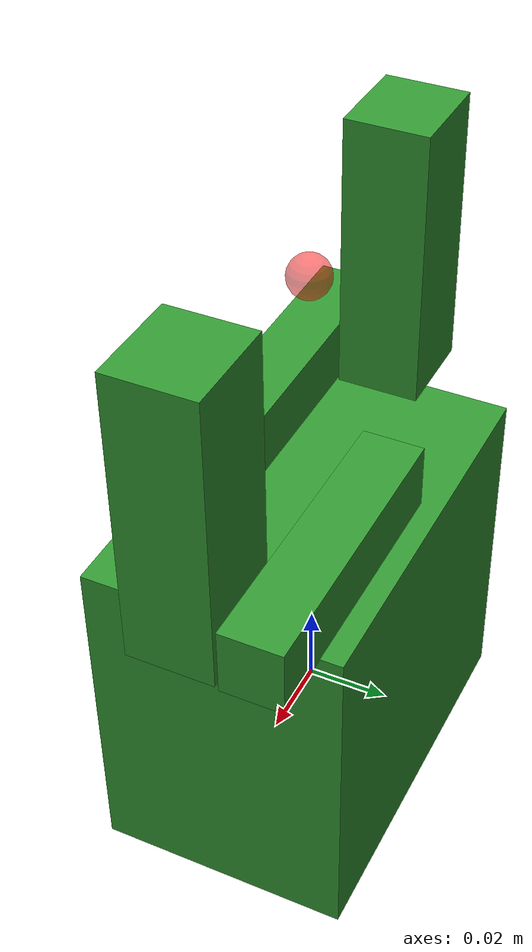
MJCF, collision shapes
<?xml version="1.0" encoding="utf-8"?>

<!-- Gripper: PGI-140-80-W -->
<!-- Datasheet: https://www.dh-robotics.com/wp-content/uploads/2022/01/PGI-Series.pdf -->

<mujoco model="gripper_pgi">
  <compiler angle="radian" meshdir="./meshes/fr5"/>

  <default>
    <default class="visual">
      <geom group="2" type="mesh" contype="0" conaffinity="0" mass="0"/>
    </default>
    <default class="collision">
      <geom group="3" rgba=".2 .6 .2 .3" type="mesh"/>
    </default>
  </default>

  <asset>
    <material name="grey" rgba="0.5 0.5 0.5 1" specular="0.8" shininess="0.6" reflectance="0.3"/>
    <material name="black" rgba="0.15 0.15 0.15 1" specular="0.8" shininess="0.6" reflectance="0.3"/>

    <mesh name="gripper_base_link_mesh" file="gripper_pgi_base_link.STL"/>
    <mesh name="finger_link1_mesh" file="gripper_pgi_finger_link.STL"/>
    <mesh name="finger_link2_mesh" file="gripper_pgi_finger_link.STL"/>
  </asset>

  <worldbody>
    <body name="gripper_base_link" pos="0 0 0" euler="0 0 0">
      <inertial pos="1.045 -0.01 -0.1" mass="1.41564" fullinertia="0.000196215 0.000433342 0.000396532 -2.95674E-07 -1.95611E-08 2.12715E-08"/>

      <geom class="visual" name="gripper_base_visual" mesh="gripper_base_link_mesh" material="grey" pos="0.04 -0.005 0"/>
      <geom class="collision" name="gripper_base_collision" type="box" size="0.0475 0.03085 0.043" pos="0.00146 -0.0006421 0.0185"/>

      <body name="finger_link1" pos="0.04 -0.005 0.0003" euler="1.5708 0 0">
        <inertial pos="-0.076592 0.078552 0.0048556" mass="0.058954" fullinertia="2.37128E-05 1.98369E-05 3.37272E-05 4.94815E-06 -3.83269E-06 4.62772E-06"/>

        <joint name="fj1" type="slide" axis="1 0 0" range="0 0.04" damping="12.0" armature="0.1" frictionloss="0.1"/>

        <geom class="visual" name="finger1_visual" mesh="finger_link1_mesh" material="black"/>
        <geom class="collision" name="finger1_base_collision" type="box" size="0.0348 0.008 0.0073" pos="-0.06725 0.069 0.014"/>
        <geom class="collision" name="finger1_collision" type="box" size="0.0118 0.0351 0.01025" pos="-0.0903 0.09683 -0.0043"/>
      </body>

      <body name="finger_link2" pos="-0.037 0.0037 0.0003" euler="-1.5708 0 3.1416">
        <inertial pos="-0.076592 0.080052 0.0048556" mass="0.058954" fullinertia="2.37128E-05 1.98369E-05 3.37272E-05 4.94815E-06 -3.83269E-06 4.62772E-06"/>

        <joint name="fj2" type="slide" axis="1 0 0" range="0 0.04" damping="12.0" armature="0.1" frictionloss="0.1"/>

        <geom class="visual" name="finger2_visual" mesh="finger_link2_mesh" material="black"/>
        <geom class="collision" name="finger2_base_collision" type="box" size="0.0348 0.008 0.0073" pos="-0.06725 0.069 0.014"/>
        <geom class="collision" name="finger2_collision" type="box" size="0.0118 0.0351 0.01025" pos="-0.0903 0.09683 -0.0043"/>
      </body>

      <site name="tool_center_point" pos="0.0015 0 0.118" size="0.005" rgba="1 0 0 0.5"/>

    </body>
  </worldbody>

  <actuator>
    <position name="act_finger1" joint="fj1" ctrlrange="0 0.04" kp="500"/>
    <position name="act_finger2" joint="fj2" ctrlrange="0 0.04" kp="500"/>
  </actuator>

</mujoco>
